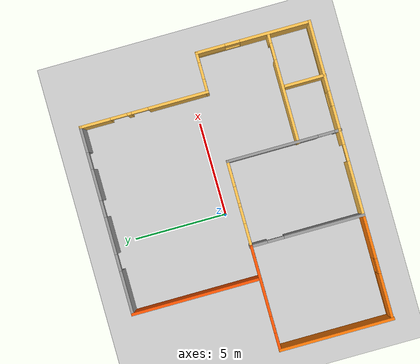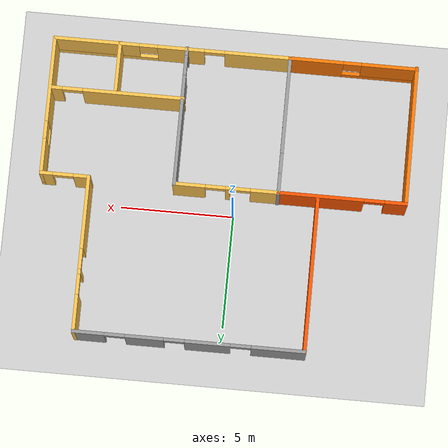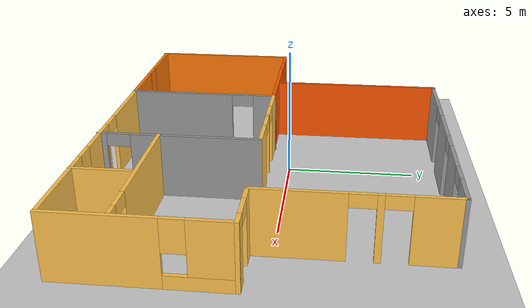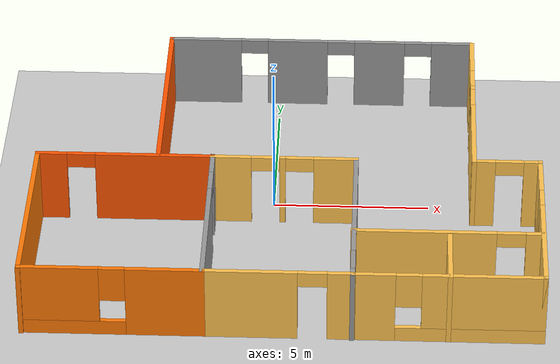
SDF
<sdf version="1.6">
 <world name="default">
  <model name="home">
   <pose>0.490005 -0.469645 0 0 -0 0</pose>
   <link name="Wall_29">
    <collision name="Wall_29_Collision">
     <geometry><box><size>6.25 0.15 2.5</size></box></geometry>
     <pose>0 0 1.25 0 -0 0</pose>
    </collision>
    <visual name="Wall_29_Visual">
     <pose>0 0 1.25 0 -0 0</pose>
     <geometry><box><size>6.25 0.15 2.5</size></box></geometry>
     <material>
      <script><uri>file://media/materials/scripts/gazebo.material</uri><name>Gazebo/Grey</name></script>
      <ambient>0.996078 0.47451 0.0196078 1</ambient>
     </material>
     <meta><layer>0</layer></meta>
    </visual>
    <pose>-8.03132 -3.44452 0 0 -0 1.5708</pose>
   </link>
   <link name="Wall_30">
    <pose>-5.23132 -0.394516 0 0 -0 0</pose>
    <visual name="Wall_30_Visual_0">
     <pose>-2.36576 0 1.25 0 -0 0</pose>
     <geometry><box><size>1.01847 0.15 2.5</size></box></geometry>
     <material>
      <script><uri>file://media/materials/scripts/gazebo.material</uri><name>Gazebo/Grey</name></script>
      <ambient>1 0.333333 0 1</ambient>
     </material>
     <meta><layer>0</layer></meta>
    </visual>
    <collision name="Wall_30_Collision_0">
     <geometry><box><size>1.01847 0.15 2.5</size></box></geometry>
     <pose>-2.36576 0 1.25 0 -0 0</pose>
    </collision>
    <visual name="Wall_30_Visual_1">
     <pose>0.959236 0 1.25 0 -0 0</pose>
     <geometry><box><size>3.83153 0.15 2.5</size></box></geometry>
     <material>
      <script><uri>file://media/materials/scripts/gazebo.material</uri><name>Gazebo/Grey</name></script>
      <ambient>1 0.333333 0 1</ambient>
     </material>
     <meta><layer>0</layer></meta>
    </visual>
    <collision name="Wall_30_Collision_1">
     <geometry><box><size>3.83153 0.15 2.5</size></box></geometry>
     <pose>0.959236 0 1.25 0 -0 0</pose>
    </collision>
    <visual name="Wall_30_Visual_2">
     <pose>-1.40653 0 2.25 0 -0 0</pose>
     <geometry><box><size>0.9 0.15 0.5</size></box></geometry>
     <material>
      <script><uri>file://media/materials/scripts/gazebo.material</uri><name>Gazebo/Grey</name></script>
      <ambient>1 0.333333 0 1</ambient>
     </material>
     <meta><layer>0</layer></meta>
    </visual>
    <collision name="Wall_30_Collision_2">
     <geometry><box><size>0.9 0.15 0.5</size></box></geometry>
     <pose>-1.40653 0 2.25 0 -0 0</pose>
    </collision>
   </link>
   <link name="Wall_33">
    <pose>-2.41868 -3.40548 0 0 0 -1.5708</pose>
    <visual name="Wall_33_Visual_0">
     <pose>-2.63049 0 1.25 0 -0 0</pose>
     <geometry><box><size>0.989023 0.15 2.5</size></box></geometry>
     <material>
      <script><uri>file://media/materials/scripts/gazebo.material</uri><name>Gazebo/Grey</name></script>
      <ambient>1 1 1 1</ambient>
     </material>
     <meta><layer>0</layer></meta>
    </visual>
    <collision name="Wall_33_Collision_0">
     <geometry><box><size>0.989023 0.15 2.5</size></box></geometry>
     <pose>-2.63049 0 1.25 0 -0 0</pose>
    </collision>
    <visual name="Wall_33_Visual_1">
     <pose>0.944511 0 1.25 0 -0 0</pose>
     <geometry><box><size>4.36098 0.15 2.5</size></box></geometry>
     <material>
      <script><uri>file://media/materials/scripts/gazebo.material</uri><name>Gazebo/Grey</name></script>
      <ambient>1 1 1 1</ambient>
     </material>
     <meta><layer>0</layer></meta>
    </visual>
    <collision name="Wall_33_Collision_1">
     <geometry><box><size>4.36098 0.15 2.5</size></box></geometry>
     <pose>0.944511 0 1.25 0 -0 0</pose>
    </collision>
    <visual name="Wall_33_Visual_2">
     <pose>-1.68598 0 2.25 0 -0 0</pose>
     <geometry><box><size>0.9 0.15 0.5</size></box></geometry>
     <material>
      <script><uri>file://media/materials/scripts/gazebo.material</uri><name>Gazebo/Grey</name></script>
      <ambient>1 1 1 1</ambient>
     </material>
     <meta><layer>0</layer></meta>
    </visual>
    <collision name="Wall_33_Collision_2">
     <geometry><box><size>0.9 0.15 0.5</size></box></geometry>
     <pose>-1.68598 0 2.25 0 -0 0</pose>
    </collision>
   </link>
   <link name="Wall_34">
    <pose>-5.21868 -6.45548 0 0 -0 3.14159</pose>
    <visual name="Wall_34_Visual_0">
     <pose>-1.65698 0 1.25 0 -0 0</pose>
     <geometry><box><size>2.43604 0.15 2.5</size></box></geometry>
     <material>
      <script><uri>file://media/materials/scripts/gazebo.material</uri><name>Gazebo/Grey</name></script>
      <ambient>0.996078 0.47451 0.0196078 1</ambient>
     </material>
     <meta><layer>0</layer></meta>
    </visual>
    <collision name="Wall_34_Collision_0">
     <geometry><box><size>2.43604 0.15 2.5</size></box></geometry>
     <pose>-1.65698 0 1.25 0 -0 0</pose>
    </collision>
    <visual name="Wall_34_Visual_1">
     <pose>1.21802 0 0.25 0 -0 0</pose>
     <geometry><box><size>3.31396 0.15 0.5</size></box></geometry>
     <material>
      <script><uri>file://media/materials/scripts/gazebo.material</uri><name>Gazebo/Grey</name></script>
      <ambient>0.996078 0.47451 0.0196078 1</ambient>
     </material>
     <meta><layer>0</layer></meta>
    </visual>
    <collision name="Wall_34_Collision_1">
     <geometry><box><size>3.31396 0.15 0.5</size></box></geometry>
     <pose>1.21802 0 0.25 0 -0 0</pose>
    </collision>
    <visual name="Wall_34_Visual_2">
     <pose>1.61802 0 1.5 0 -0 0</pose>
     <geometry><box><size>2.51396 0.15 2</size></box></geometry>
     <material>
      <script><uri>file://media/materials/scripts/gazebo.material</uri><name>Gazebo/Grey</name></script>
      <ambient>0.996078 0.47451 0.0196078 1</ambient>
     </material>
     <meta><layer>0</layer></meta>
    </visual>
    <collision name="Wall_34_Collision_2">
     <geometry><box><size>2.51396 0.15 2</size></box></geometry>
     <pose>1.61802 0 1.5 0 -0 0</pose>
    </collision>
    <visual name="Wall_34_Visual_3">
     <pose>-0.038964 0 1.9 0 -0 0</pose>
     <geometry><box><size>0.8 0.15 1.2</size></box></geometry>
     <material>
      <script><uri>file://media/materials/scripts/gazebo.material</uri><name>Gazebo/Grey</name></script>
      <ambient>0.996078 0.47451 0.0196078 1</ambient>
     </material>
     <meta><layer>0</layer></meta>
    </visual>
    <collision name="Wall_34_Collision_3">
     <geometry><box><size>0.8 0.15 1.2</size></box></geometry>
     <pose>-0.038964 0 1.9 0 -0 0</pose>
    </collision>
   </link>
   <link name="Wall_38">
    <pose>-0.118679 -6.45548 0 0 -0 0</pose>
    <visual name="Wall_38_Visual_0">
     <pose>-0.881556 0 1.25 0 -0 0</pose>
     <geometry><box><size>2.98689 0.15 2.5</size></box></geometry>
     <material>
      <script><uri>file://media/materials/scripts/gazebo.material</uri><name>Gazebo/Grey</name></script>
      <ambient>1 0.764706 0.305882 1</ambient>
     </material>
     <meta><layer>0</layer></meta>
    </visual>
    <collision name="Wall_38_Collision_0">
     <geometry><box><size>2.98689 0.15 2.5</size></box></geometry>
     <pose>-0.881556 0 1.25 0 -0 0</pose>
    </collision>
    <visual name="Wall_38_Visual_1">
     <pose>1.94344 0 1.25 0 -0 0</pose>
     <geometry><box><size>0.863112 0.15 2.5</size></box></geometry>
     <material>
      <script><uri>file://media/materials/scripts/gazebo.material</uri><name>Gazebo/Grey</name></script>
      <ambient>1 0.764706 0.305882 1</ambient>
     </material>
     <meta><layer>0</layer></meta>
    </visual>
    <collision name="Wall_38_Collision_1">
     <geometry><box><size>0.863112 0.15 2.5</size></box></geometry>
     <pose>1.94344 0 1.25 0 -0 0</pose>
    </collision>
    <visual name="Wall_38_Visual_2">
     <pose>1.06189 0 2.25 0 -0 0</pose>
     <geometry><box><size>0.9 0.15 0.5</size></box></geometry>
     <material>
      <script><uri>file://media/materials/scripts/gazebo.material</uri><name>Gazebo/Grey</name></script>
      <ambient>1 0.764706 0.305882 1</ambient>
     </material>
     <meta><layer>0</layer></meta>
    </visual>
    <collision name="Wall_38_Collision_2">
     <geometry><box><size>0.9 0.15 0.5</size></box></geometry>
     <pose>1.06189 0 2.25 0 -0 0</pose>
    </collision>
   </link>
   <link name="Wall_39">
    <pose>5.10632 -6.45548 0 0 -0 0</pose>
    <visual name="Wall_39_Visual_0">
     <pose>-2.31199 0 1.25 0 -0 0</pose>
     <geometry><box><size>1.37601 0.15 2.5</size></box></geometry>
     <material>
      <script><uri>file://media/materials/scripts/gazebo.material</uri><name>Gazebo/Grey</name></script>
      <ambient>1 0.764706 0.305882 1</ambient>
     </material>
     <meta><layer>0</layer></meta>
    </visual>
    <collision name="Wall_39_Collision_0">
     <geometry><box><size>1.37601 0.15 2.5</size></box></geometry>
     <pose>-2.31199 0 1.25 0 -0 0</pose>
    </collision>
    <visual name="Wall_39_Visual_1">
     <pose>0.688007 0 0.25 0 -0 0</pose>
     <geometry><box><size>4.62399 0.15 0.5</size></box></geometry>
     <material>
      <script><uri>file://media/materials/scripts/gazebo.material</uri><name>Gazebo/Grey</name></script>
      <ambient>1 0.764706 0.305882 1</ambient>
     </material>
     <meta><layer>0</layer></meta>
    </visual>
    <collision name="Wall_39_Collision_1">
     <geometry><box><size>4.62399 0.15 0.5</size></box></geometry>
     <pose>0.688007 0 0.25 0 -0 0</pose>
    </collision>
    <visual name="Wall_39_Visual_2">
     <pose>1.08801 0 1.5 0 -0 0</pose>
     <geometry><box><size>3.82399 0.15 2</size></box></geometry>
     <material>
      <script><uri>file://media/materials/scripts/gazebo.material</uri><name>Gazebo/Grey</name></script>
      <ambient>1 0.764706 0.305882 1</ambient>
     </material>
     <meta><layer>0</layer></meta>
    </visual>
    <collision name="Wall_39_Collision_2">
     <geometry><box><size>3.82399 0.15 2</size></box></geometry>
     <pose>1.08801 0 1.5 0 -0 0</pose>
    </collision>
    <visual name="Wall_39_Visual_3">
     <pose>-1.22399 0 1.9 0 -0 0</pose>
     <geometry><box><size>0.8 0.15 1.2</size></box></geometry>
     <material>
      <script><uri>file://media/materials/scripts/gazebo.material</uri><name>Gazebo/Grey</name></script>
      <ambient>1 0.764706 0.305882 1</ambient>
     </material>
     <meta><layer>0</layer></meta>
    </visual>
    <collision name="Wall_39_Collision_3">
     <geometry><box><size>0.8 0.15 1.2</size></box></geometry>
     <pose>-1.22399 0 1.9 0 -0 0</pose>
    </collision>
   </link>
   <link name="Wall_40">
    <pose>8.03132 -3.40548 0 0 -0 1.5708</pose>
    <visual name="Wall_40_Visual_0">
     <pose>-1.2027 0 1.25 0 -0 0</pose>
     <geometry><box><size>3.8446 0.15 2.5</size></box></geometry>
     <material>
      <script><uri>file://media/materials/scripts/gazebo.material</uri><name>Gazebo/Grey</name></script>
      <ambient>1 0.764706 0.305882 1</ambient>
     </material>
     <meta><layer>0</layer></meta>
    </visual>
    <collision name="Wall_40_Collision_0">
     <geometry><box><size>3.8446 0.15 2.5</size></box></geometry>
     <pose>-1.2027 0 1.25 0 -0 0</pose>
    </collision>
    <visual name="Wall_40_Visual_1">
     <pose>1.9223 0 0.25 0 -0 0</pose>
     <geometry><box><size>2.4054 0.15 0.5</size></box></geometry>
     <material>
      <script><uri>file://media/materials/scripts/gazebo.material</uri><name>Gazebo/Grey</name></script>
      <ambient>1 0.764706 0.305882 1</ambient>
     </material>
     <meta><layer>0</layer></meta>
    </visual>
    <collision name="Wall_40_Collision_1">
     <geometry><box><size>2.4054 0.15 0.5</size></box></geometry>
     <pose>1.9223 0 0.25 0 -0 0</pose>
    </collision>
    <visual name="Wall_40_Visual_2">
     <pose>2.3223 0 1.5 0 -0 0</pose>
     <geometry><box><size>1.6054 0.15 2</size></box></geometry>
     <material>
      <script><uri>file://media/materials/scripts/gazebo.material</uri><name>Gazebo/Grey</name></script>
      <ambient>1 0.764706 0.305882 1</ambient>
     </material>
     <meta><layer>0</layer></meta>
    </visual>
    <collision name="Wall_40_Collision_2">
     <geometry><box><size>1.6054 0.15 2</size></box></geometry>
     <pose>2.3223 0 1.5 0 -0 0</pose>
    </collision>
    <visual name="Wall_40_Visual_3">
     <pose>1.1196 0 1.9 0 -0 0</pose>
     <geometry><box><size>0.8 0.15 1.2</size></box></geometry>
     <material>
      <script><uri>file://media/materials/scripts/gazebo.material</uri><name>Gazebo/Grey</name></script>
      <ambient>1 0.764706 0.305882 1</ambient>
     </material>
     <meta><layer>0</layer></meta>
    </visual>
    <collision name="Wall_40_Collision_3">
     <geometry><box><size>0.8 0.15 1.2</size></box></geometry>
     <pose>1.1196 0 1.9 0 -0 0</pose>
    </collision>
   </link>
   <link name="Wall_41">
    <pose>6.98132 -0.355484 0 0 -0 3.14159</pose>
    <visual name="Wall_41_Visual_0">
     <pose>-0.827467 0 1.25 0 -0 0</pose>
     <geometry><box><size>0.595067 0.15 2.5</size></box></geometry>
     <material>
      <script><uri>file://media/materials/scripts/gazebo.material</uri><name>Gazebo/Grey</name></script>
      <ambient>1 0.764706 0.305882 1</ambient>
     </material>
     <meta><layer>0</layer></meta>
    </visual>
    <collision name="Wall_41_Collision_0">
     <geometry><box><size>0.595067 0.15 2.5</size></box></geometry>
     <pose>-0.827467 0 1.25 0 -0 0</pose>
    </collision>
    <visual name="Wall_41_Visual_1">
     <pose>0.747533 0 1.25 0 -0 0</pose>
     <geometry><box><size>0.754933 0.15 2.5</size></box></geometry>
     <material>
      <script><uri>file://media/materials/scripts/gazebo.material</uri><name>Gazebo/Grey</name></script>
      <ambient>1 0.764706 0.305882 1</ambient>
     </material>
     <meta><layer>0</layer></meta>
    </visual>
    <collision name="Wall_41_Collision_1">
     <geometry><box><size>0.754933 0.15 2.5</size></box></geometry>
     <pose>0.747533 0 1.25 0 -0 0</pose>
    </collision>
    <visual name="Wall_41_Visual_2">
     <pose>-0.079933 0 2.25 0 -0 0</pose>
     <geometry><box><size>0.9 0.15 0.5</size></box></geometry>
     <material>
      <script><uri>file://media/materials/scripts/gazebo.material</uri><name>Gazebo/Grey</name></script>
      <ambient>1 0.764706 0.305882 1</ambient>
     </material>
     <meta><layer>0</layer></meta>
    </visual>
    <collision name="Wall_41_Collision_2">
     <geometry><box><size>0.9 0.15 0.5</size></box></geometry>
     <pose>-0.079933 0 2.25 0 -0 0</pose>
    </collision>
   </link>
   <link name="Wall_42">
    <pose>5.93132 3.06952 0 0 -0 1.5708</pose>
    <visual name="Wall_42_Visual_0">
     <pose>-1.86127 0 1.25 0 -0 0</pose>
     <geometry><box><size>3.27747 0.15 2.5</size></box></geometry>
     <material>
      <script><uri>file://media/materials/scripts/gazebo.material</uri><name>Gazebo/Grey</name></script>
      <ambient>1 0.764706 0.305882 1</ambient>
     </material>
     <meta><layer>0</layer></meta>
    </visual>
    <collision name="Wall_42_Collision_0">
     <geometry><box><size>3.27747 0.15 2.5</size></box></geometry>
     <pose>-1.86127 0 1.25 0 -0 0</pose>
    </collision>
    <visual name="Wall_42_Visual_1">
     <pose>0.793847 0 1.25 0 -0 0</pose>
     <geometry><box><size>0.232756 0.15 2.5</size></box></geometry>
     <material>
      <script><uri>file://media/materials/scripts/gazebo.material</uri><name>Gazebo/Grey</name></script>
      <ambient>1 0.764706 0.305882 1</ambient>
     </material>
     <meta><layer>0</layer></meta>
    </visual>
    <collision name="Wall_42_Collision_1">
     <geometry><box><size>0.232756 0.15 2.5</size></box></geometry>
     <pose>0.793847 0 1.25 0 -0 0</pose>
    </collision>
    <visual name="Wall_42_Visual_2">
     <pose>2.65511 0 1.25 0 -0 0</pose>
     <geometry><box><size>1.68978 0.15 2.5</size></box></geometry>
     <material>
      <script><uri>file://media/materials/scripts/gazebo.material</uri><name>Gazebo/Grey</name></script>
      <ambient>1 0.764706 0.305882 1</ambient>
     </material>
     <meta><layer>0</layer></meta>
    </visual>
    <collision name="Wall_42_Collision_2">
     <geometry><box><size>1.68978 0.15 2.5</size></box></geometry>
     <pose>2.65511 0 1.25 0 -0 0</pose>
    </collision>
    <visual name="Wall_42_Visual_3">
     <pose>0.227469 0 2.25 0 -0 0</pose>
     <geometry><box><size>0.9 0.15 0.5</size></box></geometry>
     <material>
      <script><uri>file://media/materials/scripts/gazebo.material</uri><name>Gazebo/Grey</name></script>
      <ambient>1 0.764706 0.305882 1</ambient>
     </material>
     <meta><layer>0</layer></meta>
    </visual>
    <collision name="Wall_42_Collision_3">
     <geometry><box><size>0.9 0.15 0.5</size></box></geometry>
     <pose>0.227469 0 2.25 0 -0 0</pose>
    </collision>
    <visual name="Wall_42_Visual_4">
     <pose>1.36023 0 2.25 0 -0 0</pose>
     <geometry><box><size>0.9 0.15 0.5</size></box></geometry>
     <material>
      <script><uri>file://media/materials/scripts/gazebo.material</uri><name>Gazebo/Grey</name></script>
      <ambient>1 0.764706 0.305882 1</ambient>
     </material>
     <meta><layer>0</layer></meta>
    </visual>
    <collision name="Wall_42_Collision_4">
     <geometry><box><size>0.9 0.15 0.5</size></box></geometry>
     <pose>1.36023 0 2.25 0 -0 0</pose>
    </collision>
   </link>
   <link name="Wall_43">
    <pose>0.881321 6.49452 0 0 -0 3.14159</pose>
    <visual name="Wall_43_Visual_0">
     <pose>-4.40937 0 1.25 0 -0 0</pose>
     <geometry><box><size>1.43125 0.15 2.5</size></box></geometry>
     <material>
      <script><uri>file://media/materials/scripts/gazebo.material</uri><name>Gazebo/Grey</name></script>
      <ambient>1 1 1 1</ambient>
     </material>
     <meta><layer>0</layer></meta>
    </visual>
    <collision name="Wall_43_Collision_0">
     <geometry><box><size>1.43125 0.15 2.5</size></box></geometry>
     <pose>-4.40937 0 1.25 0 -0 0</pose>
    </collision>
    <visual name="Wall_43_Visual_1">
     <pose>-1.94917 0 1.25 0 -0 0</pose>
     <geometry><box><size>1.68916 0.15 2.5</size></box></geometry>
     <material>
      <script><uri>file://media/materials/scripts/gazebo.material</uri><name>Gazebo/Grey</name></script>
      <ambient>1 1 1 1</ambient>
     </material>
     <meta><layer>0</layer></meta>
    </visual>
    <collision name="Wall_43_Collision_1">
     <geometry><box><size>1.68916 0.15 2.5</size></box></geometry>
     <pose>-1.94917 0 1.25 0 -0 0</pose>
    </collision>
    <visual name="Wall_43_Visual_2">
     <pose>0.801811 0 1.25 0 -0 0</pose>
     <geometry><box><size>2.0128 0.15 2.5</size></box></geometry>
     <material>
      <script><uri>file://media/materials/scripts/gazebo.material</uri><name>Gazebo/Grey</name></script>
      <ambient>1 1 1 1</ambient>
     </material>
     <meta><layer>0</layer></meta>
    </visual>
    <collision name="Wall_43_Collision_2">
     <geometry><box><size>2.0128 0.15 2.5</size></box></geometry>
     <pose>0.801811 0 1.25 0 -0 0</pose>
    </collision>
    <visual name="Wall_43_Visual_3">
     <pose>3.91661 0 1.25 0 -0 0</pose>
     <geometry><box><size>2.41679 0.15 2.5</size></box></geometry>
     <material>
      <script><uri>file://media/materials/scripts/gazebo.material</uri><name>Gazebo/Grey</name></script>
      <ambient>1 1 1 1</ambient>
     </material>
     <meta><layer>0</layer></meta>
    </visual>
    <collision name="Wall_43_Collision_3">
     <geometry><box><size>2.41679 0.15 2.5</size></box></geometry>
     <pose>3.91661 0 1.25 0 -0 0</pose>
    </collision>
    <visual name="Wall_43_Visual_4">
     <pose>-3.24375 0 2.25 0 -0 0</pose>
     <geometry><box><size>0.9 0.15 0.5</size></box></geometry>
     <material>
      <script><uri>file://media/materials/scripts/gazebo.material</uri><name>Gazebo/Grey</name></script>
      <ambient>1 1 1 1</ambient>
     </material>
     <meta><layer>0</layer></meta>
    </visual>
    <collision name="Wall_43_Collision_4">
     <geometry><box><size>0.9 0.15 0.5</size></box></geometry>
     <pose>-3.24375 0 2.25 0 -0 0</pose>
    </collision>
    <visual name="Wall_43_Visual_5">
     <pose>-0.654589 0 2.25 0 -0 0</pose>
     <geometry><box><size>0.9 0.15 0.5</size></box></geometry>
     <material>
      <script><uri>file://media/materials/scripts/gazebo.material</uri><name>Gazebo/Grey</name></script>
      <ambient>1 1 1 1</ambient>
     </material>
     <meta><layer>0</layer></meta>
    </visual>
    <collision name="Wall_43_Collision_5">
     <geometry><box><size>0.9 0.15 0.5</size></box></geometry>
     <pose>-0.654589 0 2.25 0 -0 0</pose>
    </collision>
    <visual name="Wall_43_Visual_6">
     <pose>2.25821 0 2.25 0 -0 0</pose>
     <geometry><box><size>0.9 0.15 0.5</size></box></geometry>
     <material>
      <script><uri>file://media/materials/scripts/gazebo.material</uri><name>Gazebo/Grey</name></script>
      <ambient>1 1 1 1</ambient>
     </material>
     <meta><layer>0</layer></meta>
    </visual>
    <collision name="Wall_43_Collision_6">
     <geometry><box><size>0.9 0.15 0.5</size></box></geometry>
     <pose>2.25821 0 2.25 0 -0 0</pose>
    </collision>
   </link>
   <link name="Wall_44">
    <collision name="Wall_44_Collision">
     <geometry><box><size>7 0.15 2.5</size></box></geometry>
     <pose>0 0 1.25 0 -0 0</pose>
    </collision>
    <visual name="Wall_44_Visual">
     <pose>0 0 1.25 0 -0 0</pose>
     <geometry><box><size>7 0.15 2.5</size></box></geometry>
     <material>
      <script><uri>file://media/materials/scripts/gazebo.material</uri><name>Gazebo/Grey</name></script>
      <ambient>1 0.333333 0 1</ambient>
     </material>
     <meta><layer>0</layer></meta>
    </visual>
    <pose>-4.16868 3.06952 0 0 0 -1.5708</pose>
   </link>
   <link name="Wall_46">
    <pose>-0.131321 -0.394516 0 0 -0 0</pose>
    <visual name="Wall_46_Visual_0">
     <pose>-1.71314 0 1.25 0 -0 0</pose>
     <geometry><box><size>1.32372 0.15 2.5</size></box></geometry>
     <material>
      <script><uri>file://media/materials/scripts/gazebo.material</uri><name>Gazebo/Grey</name></script>
      <ambient>1 0.764706 0.305882 1</ambient>
     </material>
     <meta><layer>0</layer></meta>
    </visual>
    <collision name="Wall_46_Collision_0">
     <geometry><box><size>1.32372 0.15 2.5</size></box></geometry>
     <pose>-1.71314 0 1.25 0 -0 0</pose>
    </collision>
    <visual name="Wall_46_Visual_1">
     <pose>-0.055979 0 1.25 0 -0 0</pose>
     <geometry><box><size>0.190608 0.15 2.5</size></box></geometry>
     <material>
      <script><uri>file://media/materials/scripts/gazebo.material</uri><name>Gazebo/Grey</name></script>
      <ambient>1 0.764706 0.305882 1</ambient>
     </material>
     <meta><layer>0</layer></meta>
    </visual>
    <collision name="Wall_46_Collision_1">
     <geometry><box><size>0.190608 0.15 2.5</size></box></geometry>
     <pose>-0.055979 0 1.25 0 -0 0</pose>
    </collision>
    <visual name="Wall_46_Visual_2">
     <pose>1.65716 0 1.25 0 -0 0</pose>
     <geometry><box><size>1.43568 0.15 2.5</size></box></geometry>
     <material>
      <script><uri>file://media/materials/scripts/gazebo.material</uri><name>Gazebo/Grey</name></script>
      <ambient>1 0.764706 0.305882 1</ambient>
     </material>
     <meta><layer>0</layer></meta>
    </visual>
    <collision name="Wall_46_Collision_2">
     <geometry><box><size>1.43568 0.15 2.5</size></box></geometry>
     <pose>1.65716 0 1.25 0 -0 0</pose>
    </collision>
    <visual name="Wall_46_Visual_3">
     <pose>-0.601283 0 2.25 0 -0 0</pose>
     <geometry><box><size>0.9 0.15 0.5</size></box></geometry>
     <material>
      <script><uri>file://media/materials/scripts/gazebo.material</uri><name>Gazebo/Grey</name></script>
      <ambient>1 0.764706 0.305882 1</ambient>
     </material>
     <meta><layer>0</layer></meta>
    </visual>
    <collision name="Wall_46_Collision_3">
     <geometry><box><size>0.9 0.15 0.5</size></box></geometry>
     <pose>-0.601283 0 2.25 0 -0 0</pose>
    </collision>
    <visual name="Wall_46_Visual_4">
     <pose>0.489325 0 2.25 0 -0 0</pose>
     <geometry><box><size>0.9 0.15 0.5</size></box></geometry>
     <material>
      <script><uri>file://media/materials/scripts/gazebo.material</uri><name>Gazebo/Grey</name></script>
      <ambient>1 0.764706 0.305882 1</ambient>
     </material>
     <meta><layer>0</layer></meta>
    </visual>
    <collision name="Wall_46_Collision_4">
     <geometry><box><size>0.9 0.15 0.5</size></box></geometry>
     <pose>0.489325 0 2.25 0 -0 0</pose>
    </collision>
   </link>
   <link name="Wall_47">
    <pose>2.16868 -3.44452 0 0 0 -1.5708</pose>
    <visual name="Wall_47_Visual_0">
     <pose>-0.645037 0 1.25 0 -0 0</pose>
     <geometry><box><size>4.95993 0.15 2.5</size></box></geometry>
     <material>
      <script><uri>file://media/materials/scripts/gazebo.material</uri><name>Gazebo/Grey</name></script>
      <ambient>1 1 1 1</ambient>
     </material>
     <meta><layer>0</layer></meta>
    </visual>
    <collision name="Wall_47_Collision_0">
     <geometry><box><size>4.95993 0.15 2.5</size></box></geometry>
     <pose>-0.645037 0 1.25 0 -0 0</pose>
    </collision>
    <visual name="Wall_47_Visual_1">
     <pose>2.92996 0 1.25 0 -0 0</pose>
     <geometry><box><size>0.390074 0.15 2.5</size></box></geometry>
     <material>
      <script><uri>file://media/materials/scripts/gazebo.material</uri><name>Gazebo/Grey</name></script>
      <ambient>1 1 1 1</ambient>
     </material>
     <meta><layer>0</layer></meta>
    </visual>
    <collision name="Wall_47_Collision_1">
     <geometry><box><size>0.390074 0.15 2.5</size></box></geometry>
     <pose>2.92996 0 1.25 0 -0 0</pose>
    </collision>
    <visual name="Wall_47_Visual_2">
     <pose>2.28493 0 2.25 0 -0 0</pose>
     <geometry><box><size>0.9 0.15 0.5</size></box></geometry>
     <material>
      <script><uri>file://media/materials/scripts/gazebo.material</uri><name>Gazebo/Grey</name></script>
      <ambient>1 1 1 1</ambient>
     </material>
     <meta><layer>0</layer></meta>
    </visual>
    <collision name="Wall_47_Collision_2">
     <geometry><box><size>0.9 0.15 0.5</size></box></geometry>
     <pose>2.28493 0 2.25 0 -0 0</pose>
    </collision>
   </link>
   <link name="Wall_49">
    <pose>5.06537 -4.21229 0 0 -0 0</pose>
    <visual name="Wall_49_Visual_0">
     <pose>-0.740357 0 1.25 0 -0 0</pose>
     <geometry><box><size>4.51929 0.15 2.5</size></box></geometry>
     <material>
      <script><uri>file://media/materials/scripts/gazebo.material</uri><name>Gazebo/Grey</name></script>
      <ambient>1 0.764706 0.305882 1</ambient>
     </material>
     <meta><layer>0</layer></meta>
    </visual>
    <collision name="Wall_49_Collision_0">
     <geometry><box><size>4.51929 0.15 2.5</size></box></geometry>
     <pose>-0.740357 0 1.25 0 -0 0</pose>
    </collision>
    <visual name="Wall_49_Visual_1">
     <pose>2.70964 0 1.25 0 -0 0</pose>
     <geometry><box><size>0.580713 0.15 2.5</size></box></geometry>
     <material>
      <script><uri>file://media/materials/scripts/gazebo.material</uri><name>Gazebo/Grey</name></script>
      <ambient>1 0.764706 0.305882 1</ambient>
     </material>
     <meta><layer>0</layer></meta>
    </visual>
    <collision name="Wall_49_Collision_1">
     <geometry><box><size>0.580713 0.15 2.5</size></box></geometry>
     <pose>2.70964 0 1.25 0 -0 0</pose>
    </collision>
    <visual name="Wall_49_Visual_2">
     <pose>1.96929 0 2.25 0 -0 0</pose>
     <geometry><box><size>0.9 0.15 0.5</size></box></geometry>
     <material>
      <script><uri>file://media/materials/scripts/gazebo.material</uri><name>Gazebo/Grey</name></script>
      <ambient>1 0.764706 0.305882 1</ambient>
     </material>
     <meta><layer>0</layer></meta>
    </visual>
    <collision name="Wall_49_Collision_2">
     <geometry><box><size>0.9 0.15 0.5</size></box></geometry>
     <pose>1.96929 0 2.25 0 -0 0</pose>
    </collision>
   </link>
   <link name="Wall_51">
    <collision name="Wall_51_Collision">
     <geometry><box><size>2.25 0.15 2.5</size></box></geometry>
     <pose>0 0 1.25 0 -0 0</pose>
    </collision>
    <visual name="Wall_51_Visual">
     <pose>0 0 1.25 0 -0 0</pose>
     <geometry><box><size>2.25 0.15 2.5</size></box></geometry>
     <material>
      <script><uri>file://media/materials/scripts/gazebo.material</uri><name>Gazebo/Grey</name></script>
      <ambient>1 0.764706 0.305882 1</ambient>
     </material>
     <meta><layer>0</layer></meta>
    </visual>
    <pose>5.13408 -5.42411 0 0 0 -1.5708</pose>
   </link>
   <static>1</static>
  </model>
  <model name="ground_plane">
   <static>1</static>
   <link name="link">
    <collision name="collision">
     <geometry><plane><normal>0 0 1</normal><size>100 100</size></plane></geometry>
     <surface><friction><ode><mu>100</mu><mu2>50</mu2></ode></friction></surface>
    </collision>
    <visual name="visual">
     <cast_shadows>0</cast_shadows>
     <geometry><plane><normal>0 0 1</normal><size>100 100</size></plane></geometry>
     <material>
      <script><uri>file://media/materials/scripts/gazebo.material</uri><name>Gazebo/Grey</name></script>
     </material>
    </visual>
   </link>
  </model>
 </world>
</sdf>
